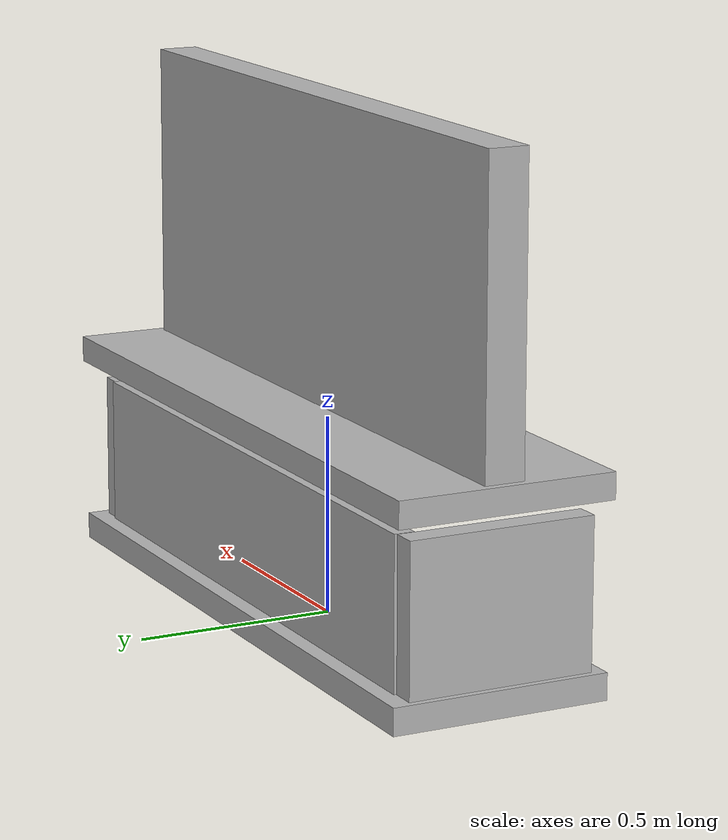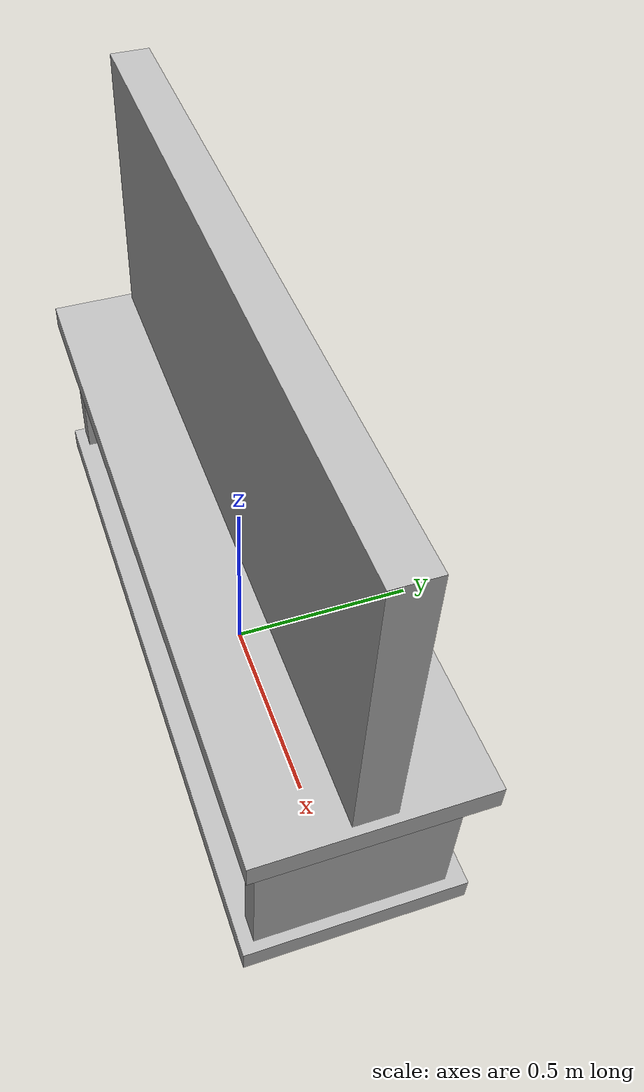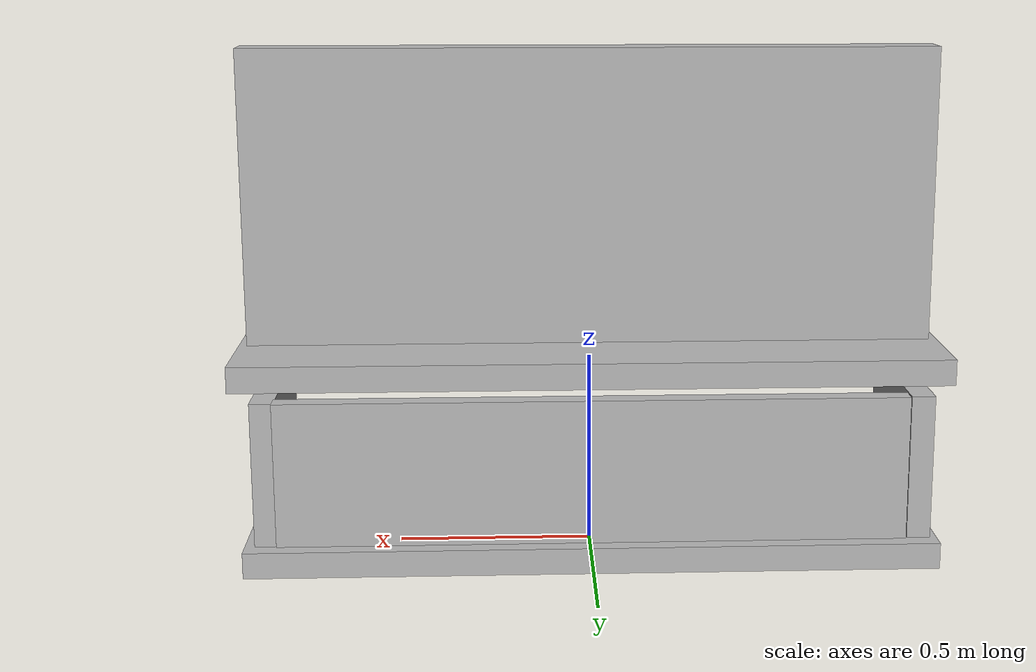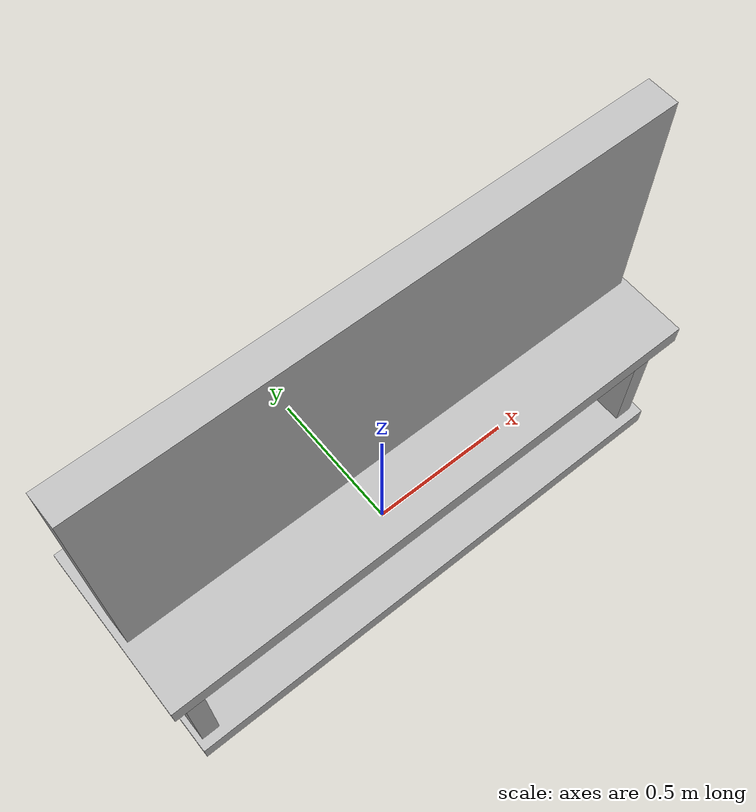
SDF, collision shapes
<?xml version="1.0"?>
<sdf version="1.4">
  <model name="television">
    <static>false</static>
    <link name="link">
   <collision name="collision">
<pose>0 0 0.9 0 0 0</pose>
        <geometry>
	<box><size>1.76 0.1 0.8</size></box>
        </geometry>
</collision>
      <collision name="collision1">
<pose>0 0 0.0335 0 0 0</pose>
        <geometry>
	<box><size>1.76 0.55 0.067</size></box>
        </geometry>
      </collision>
      <collision name="collision2">
<pose>0 0 0.5135 0 0 0</pose>
        <geometry>
	<box><size>1.80 0.55 0.066</size></box>
        </geometry>
      </collision>
      <collision name="collision3">
<pose>0.825 -0.008 0.22 0 0 0</pose>
        <geometry>
	<box><size>0.06 0.47 0.44</size></box>
        </geometry>
      </collision>
      <collision name="collision4">
<pose>-0.833 -0.008 0.22 0 0 0</pose>
        <geometry>
	<box><size>0.06 0.47 0.44</size></box>
        </geometry>
      </collision>
      <collision name="collision5">
<pose> 0 0.208 0.22 0 0 0</pose>
        <geometry>
	<box><size>1.6 0.05 0.44</size></box>
        </geometry>
      </collision>
      <visual name="visual">
<pose>0.24 0.22 0 0 0 0</pose>
        <geometry>
          <mesh>
            <uri>model://television/meshes/television.dae</uri>
<scale>0.55 0.55 0.55</scale>
          </mesh>
        </geometry>
      </visual>
    </link>
  </model>
</sdf>
